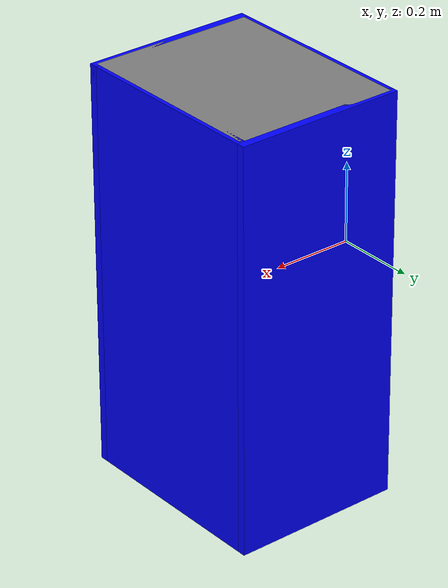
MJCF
<mujoco model="block">

  <worldbody>
        <body name="block1" pos="0.3 0.0 0.0">
        <geom pos="0 0 0" size="0.2 0.25 0.02" type="box" group="0" friction="1 0.005 0.0001"/>
        <geom pos="0 0 0.48" size="0.2 0.25 0.02" type="box" conaffinity="0" contype="0" group="1"/>
            <geom pos="0 0.25 0." size="0.21 0.01 0.5" type="box" group="0" friction="1 0.005 0.0001" rgba="0 0 1 1"/>
            <geom pos="0 0.25 0." size="0.21 0.01 0.5" type="box" conaffinity="0" contype="0" group="1" />
            <geom pos="0 -0.25 0." size="0.21 0.01 0.5" type="box" group="0" friction="1 0.005 0.0001" rgba="0 0 1 1"/>
            <geom pos="0 -0.25 0." size="0.21 0.01 0.5" type="box" conaffinity="0" contype="0" group="1" />
            <geom pos="0.2 0 0." size="0.01 0.25 0.5" type="box" group="0" friction="1 0.005 0.0001" rgba="0 0 1 1"/>
            <geom pos="0.2 0 0." size="0.01 0.25 0.5" type="box" conaffinity="0" contype="0" group="1" />
            <geom pos="-0.2 0 0." size="0.01 0.25 0.5" type="box" group="0" friction="1 0.005 0.0001" rgba="0 0 1 1"/>
            <geom pos="-0.2 0 0." size="0.01 0.25 0.5" type="box" conaffinity="0" contype="0" group="1" />
        </body>

  </worldbody>

</mujoco>
